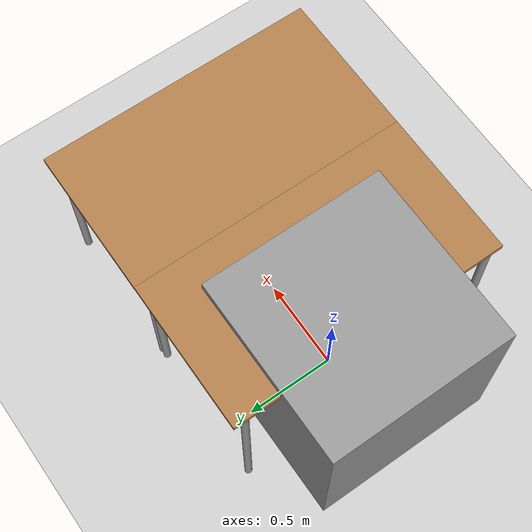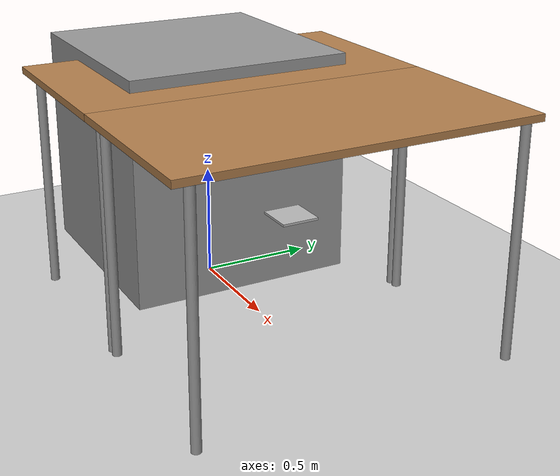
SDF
<sdf version="1.6">
 <world name="default">
  <light name="sun" type="directional">
   <pose>0 0 10 0 -0 0</pose>
   <diffuse>0.8 0.8 0.8 1</diffuse>
   <specular>0.2 0.2 0.2 1</specular>
   <attenuation>
    <range>1000</range>
    <constant>0.9</constant>
    <linear>0.01</linear>
    <quadratic>0.001</quadratic>
   </attenuation>
   <direction>-0.5 0.1 -0.9</direction>
  </light>
  <gravity>0 0 -9.8</gravity>
  <magnetic_field>6e-06 2.3e-05 -4.2e-05</magnetic_field>
  <atmosphere type="adiabatic"/>
  <physics name="default_physics" default="0" type="ode">
   <max_step_size>0.001</max_step_size>
   <real_time_factor>1</real_time_factor>
   <real_time_update_rate>1000</real_time_update_rate>
  </physics>
  <scene><ambient>0.4 0.4 0.4 1</ambient><background>0.7 0.7 0.7 1</background><shadows>1</shadows></scene>
  <audio><device>default</device></audio>
  <spherical_coordinates>
   <surface_model>EARTH_WGS84</surface_model>
   <latitude_deg>0</latitude_deg>
   <longitude_deg>0</longitude_deg>
   <elevation>0</elevation>
   <heading_deg>0</heading_deg>
  </spherical_coordinates>
  <model name="ground_plane"><include><uri>model://ground_plane</uri></include></model>
  <model name="table1">
   <include><uri>model://table</uri></include>
   <pose>0.14 0 0  0 0 1.57</pose>
   <static>true</static>
  </model>
  <model name="table2">
   <include><uri>model://table</uri></include>
   <pose>0.94 0 0  0 0 1.57</pose>
   <static>true</static>
  </model>
  <model name="unit_box">
   <include><uri>model://unit_box</uri></include>
   <pose>-0.14 0 0.565 0 0 0</pose>
   <static>true</static>
  </model>
  <model name="Apriltag36_11_00000">
   <link name="main">
    <visual name="main_Visual">
     <geometry><box><size>0.16 0.16 0.010004</size></box></geometry>
     <material>
      <script>
       <uri>model://Apriltag36_11_00000/materials/scripts</uri>
       <uri>model://Apriltag36_11_00000/materials/textures</uri>
       <name>Apriltag36_11_00000</name>
      </script>
     </material>
    </visual>
   </link>
   <static>1</static>
   <pose>0.712874 0.033278 0.521968 0 0 0</pose>
  </model>
 </world>
</sdf>

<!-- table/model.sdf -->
<sdf version="1.5">
  <model name="table">
    <static>true</static>
    <link name="link">
      <collision name="surface">
        <pose>0 0 1.0 0 0 0</pose>
        <geometry>
          <box>
            <size>1.5 0.8 0.03</size>
          </box>
        </geometry>
        <surface>
          <friction>
            <ode>
              <mu>0.6</mu>
              <mu2>0.6</mu2>
            </ode>
          </friction>
        </surface>
      </collision>
      <visual name="visual1">
        <pose>0 0 1.0 0 0 0</pose>
        <geometry>
          <box>
            <size>1.5 0.8 0.03</size>
          </box>
        </geometry>
        <material>
          <script>
            <uri>model://media/materials/scripts/gazebo.material</uri>
            <name>Gazebo/Wood</name>
          </script>
        </material>
      </visual>
      <collision name="front_left_leg">
        <pose>0.68 0.38 0.5 0 0 0</pose>
        <geometry>
          <cylinder>
            <radius>0.02</radius>
            <length>1.0</length>
          </cylinder>
        </geometry>
      </collision>
      <visual name="front_left_leg">
        <pose>0.68 0.38 0.5 0 0 0</pose>
        <geometry>
          <cylinder>
            <radius>0.02</radius>
            <length>1.0</length>
          </cylinder>
        </geometry>
        <material>
          <script>
            <uri>model://media/materials/scripts/gazebo.material</uri>
            <name>Gazebo/Grey</name>
          </script>
        </material>
      </visual>
      <collision name="front_right_leg">
        <pose>0.68 -0.38 0.5 0 0 0</pose>
        <geometry>
          <cylinder>
            <radius>0.02</radius>
            <length>1.0</length>
          </cylinder>
        </geometry>
      </collision>
      <visual name="front_right_leg">
        <pose>0.68 -0.38 0.5 0 0 0</pose>
        <geometry>
          <cylinder>
            <radius>0.02</radius>
            <length>1.0</length>
          </cylinder>
        </geometry>
        <material>
          <script>
            <uri>model://media/materials/scripts/gazebo.material</uri>
            <name>Gazebo/Grey</name>
          </script>
        </material>
      </visual>
      <collision name="back_right_leg">
        <pose>-0.68 -0.38 0.5 0 0 0</pose>
        <geometry>
          <cylinder>
            <radius>0.02</radius>
            <length>1.0</length>
          </cylinder>
        </geometry>
      </collision>
      <visual name="back_right_leg">
        <pose>-0.68 -0.38 0.5 0 0 0</pose>
        <geometry>
          <cylinder>
            <radius>0.02</radius>
            <length>1.0</length>
          </cylinder>
        </geometry>
        <material>
          <script>
            <uri>model://media/materials/scripts/gazebo.material</uri>
            <name>Gazebo/Grey</name>
          </script>
        </material>
      </visual>
      <collision name="back_left_leg">
        <pose>-0.68 0.38 0.5 0 0 0</pose>
        <geometry>
          <cylinder>
            <radius>0.02</radius>
            <length>1.0</length>
          </cylinder>
        </geometry>
      </collision>
      <visual name="back_left_leg">
        <pose>-0.68 0.38 0.5 0 0 0</pose>
        <geometry>
          <cylinder>
            <radius>0.02</radius>
            <length>1.0</length>
          </cylinder>
        </geometry>
        <material>
          <script>
            <uri>model://media/materials/scripts/gazebo.material</uri>
            <name>Gazebo/Grey</name>
          </script>
        </material>
      </visual>
    </link>
  </model>
</sdf>

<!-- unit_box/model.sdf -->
<sdf version='1.7'>
  <model name='unit_box'>
    <link name='link'>
      <inertial>
        <mass>1</mass>
        <inertia>
          <ixx>0.166667</ixx>
          <ixy>0</ixy>
          <ixz>0</ixz>
          <iyy>0.166667</iyy>
          <iyz>0</iyz>
          <izz>0.166667</izz>
        </inertia>
        <pose>0 0 0 0 -0 0</pose>
      </inertial>
      <self_collide>0</self_collide>
      <enable_wind>0</enable_wind>
      <pose>0 0 0 0 -0 0</pose>
      <gravity>1</gravity>
      <kinematic>0</kinematic>
      <visual name='visual'>
        <geometry>
          <box>
            <size>1 1 1</size>
          </box>
        </geometry>
        <material>
          <script>
            <name>Gazebo/Grey</name>
            <uri>file://media/materials/scripts/gazebo.material</uri>
          </script>
          <shader type='pixel'>
            <normal_map>__default__</normal_map>
          </shader>
          <ambient>0.8 0.8 0.8 1</ambient>
          <diffuse>0.7 0.7 0.7 1</diffuse>
          <specular>0.01 0.01 0.01 1</specular>
          <emissive>0 0 0 1</emissive>
        </material>
        <pose>0 0 0 0 -0 0</pose>
        <transparency>0</transparency>
        <cast_shadows>1</cast_shadows>
      </visual>
      <collision name='collision'>
        <laser_retro>0</laser_retro>
        <max_contacts>10</max_contacts>
        <pose>0 0 0 0 -0 0</pose>
        <geometry>
          <box>
            <size>1 1 1</size>
          </box>
        </geometry>
        <surface>
          <friction>
            <ode>
              <mu>1</mu>
              <mu2>1</mu2>
              <fdir1>0 0 0</fdir1>
              <slip1>0</slip1>
              <slip2>0</slip2>
            </ode>
            <torsional>
              <coefficient>1</coefficient>
              <patch_radius>0</patch_radius>
              <surface_radius>0</surface_radius>
              <use_patch_radius>1</use_patch_radius>
              <ode>
                <slip>0</slip>
              </ode>
            </torsional>
          </friction>
          <bounce>
            <restitution_coefficient>0</restitution_coefficient>
            <threshold>1e+06</threshold>
          </bounce>
          <contact>
            <collide_without_contact>0</collide_without_contact>
            <collide_without_contact_bitmask>1</collide_without_contact_bitmask>
            <collide_bitmask>1</collide_bitmask>
            <ode>
              <soft_cfm>0</soft_cfm>
              <soft_erp>0.2</soft_erp>
              <kp>1e+13</kp>
              <kd>1</kd>
              <max_vel>0.01</max_vel>
              <min_depth>0</min_depth>
            </ode>
            <bullet>
              <split_impulse>1</split_impulse>
              <split_impulse_penetration_threshold>-0.01</split_impulse_penetration_threshold>
              <soft_cfm>0</soft_cfm>
              <soft_erp>0.2</soft_erp>
              <kp>1e+13</kp>
              <kd>1</kd>
            </bullet>
          </contact>
        </surface>
      </collision>
    </link>
    <static>0</static>
    <allow_auto_disable>1</allow_auto_disable>
  </model>
</sdf>
